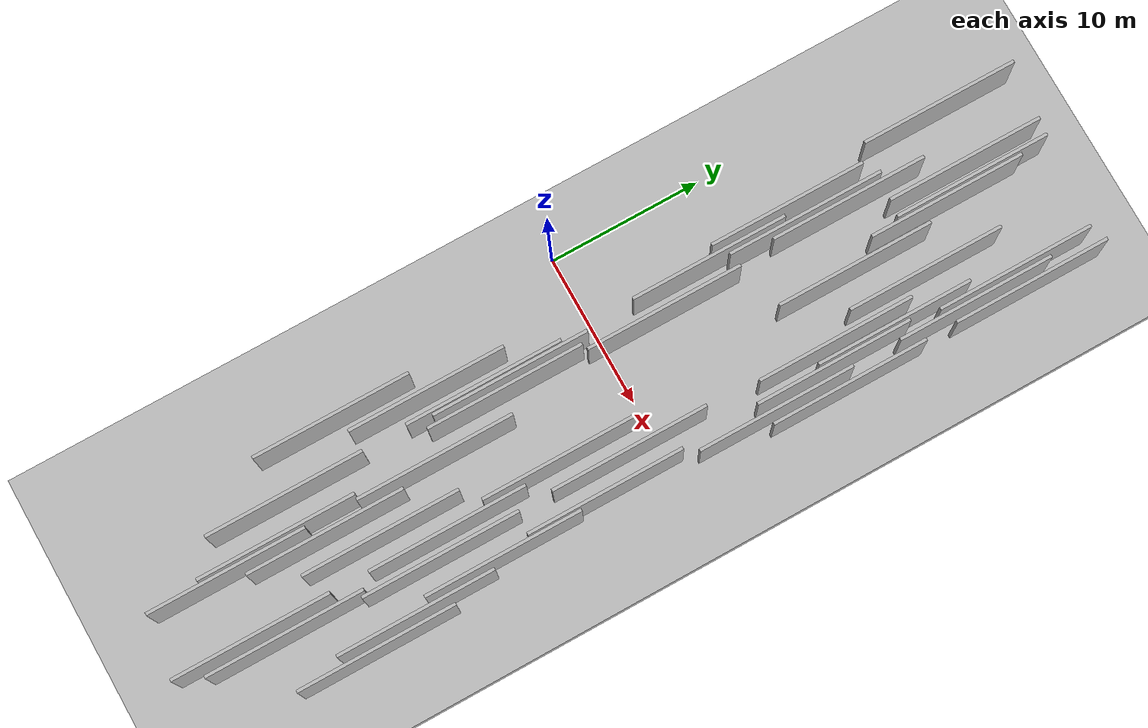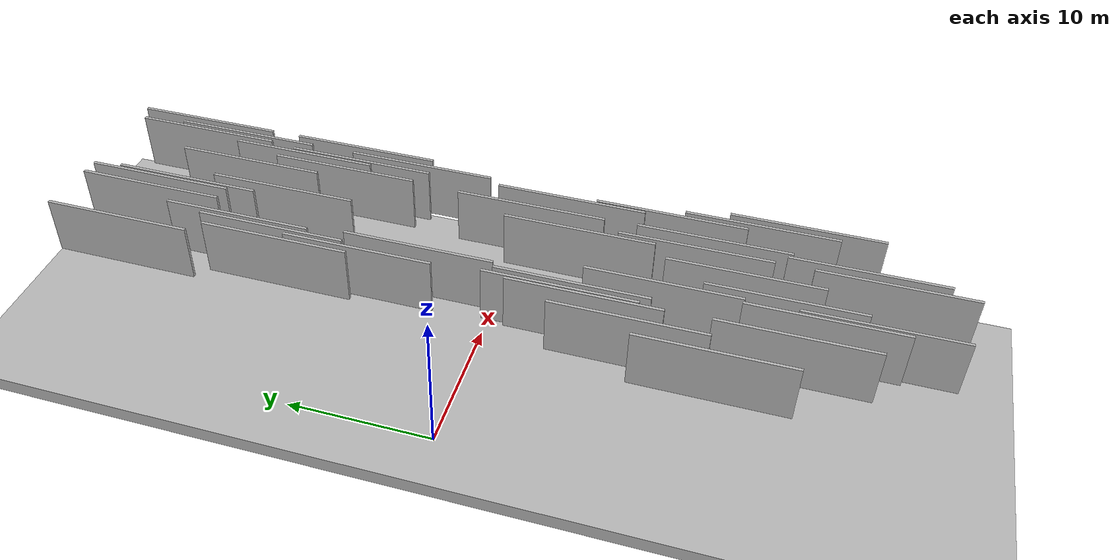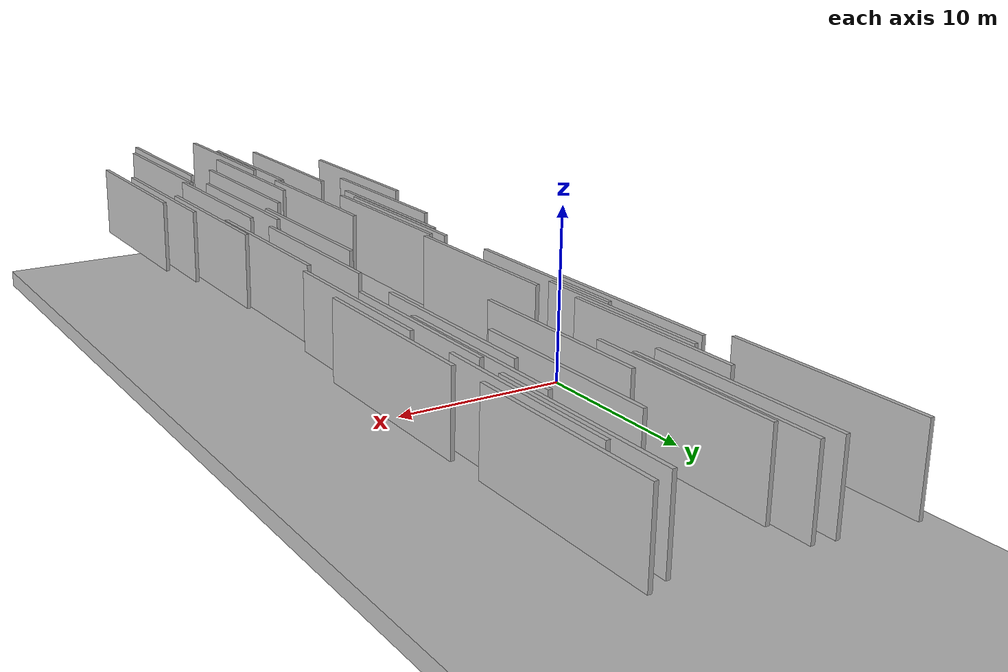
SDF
<?xml version="1.0" encoding="utf-8"?>

<sdf version="1.6">

   <world name="default">

      <gui fullscreen="0">

         <camera name="user_camera">

            <pose>-15 0 4.57585 0 0 0</pose>

            <view_controller>orbit</view_controller>

         </camera>

      </gui>

      <scene>

         <sky>

           <clouds>

             <speed>12</speed>

           </clouds>

         </sky>

         <ambient>0.4 0.4 0.4 1</ambient>

         <background>0.7 0.7 0.7 1</background>

         <shadows>1</shadows>

      </scene>

      <gravity>0 0 -9.8066</gravity>

      <magnetic_field>6e-06 2.3e-05 -4.2e-05</magnetic_field>

      <physics default="0" name="default_physics" type="ode">

         <ode>

            <solver>

               <type>quick</type>

               <iters>10</iters>

               <sor>1.0</sor>

               <use_dynamic_moi_rescaling>0</use_dynamic_moi_rescaling>

            </solver>

            <constraints>

               <cfm>0</cfm>

               <erp>0.2</erp>

               <contact_max_correcting_vel>100</contact_max_correcting_vel>

               <contact_surface_layer>0.001</contact_surface_layer>

            </constraints>

         </ode>

         <max_step_size>0.004</max_step_size>

         <real_time_factor>1</real_time_factor>

         <real_time_update_rate>250</real_time_update_rate>

      </physics>

      <light name="sun" type="directional">

         <cast_shadows>1</cast_shadows>

         <pose>0 0 10 0 0 0</pose>

         <diffuse>0.8 0.8 0.8 1</diffuse>

         <specular>0.2 0.2 0.2 1</specular>

         <attenuation>

            <range>1000</range>

            <constant>0.9</constant>

            <linear>0.01</linear>

            <quadratic>0.001</quadratic>

         </attenuation>

         <direction>-0.5 0.1 -0.9</direction>

      </light>

      <include>

         <name>ground_plane_1</name>

         <uri>model://HANNAS_ground_plane</uri>

         <pose>0 0 0  0 0 0</pose>

      </include>

      <include>

         <name>ground_plane_2</name>

         <uri>model://HANNAS_ground_plane</uri>

         <pose>100 0 0  0 0 0</pose>

      </include>

      <model name="HANNAS_wall_1">

         <static>1</static>

         <pose frame="">11.0375 -16.7799 5.0 0.000000 0.000000 1.570796</pose>

         <link name="link">

            <pose frame="">0 0 2.00 0 0 0</pose>

            <collision name="collision">

               <geometry>

                  <box>

                     <size>10.00 0.2 4.00</size>

                  </box>

               </geometry>

               <max_contacts>10</max_contacts>

               <surface>

                  <contact>

                     <ode/>

                  </contact>

                  <bounce/>

                  <friction>

                     <torsional>

                        <ode/>

                     </torsional>

                     <ode/>

                  </friction>

               </surface>

            </collision>

            <visual name="visual">

               <cast_shadows>0</cast_shadows>

               <geometry>

                  <box>

                     <size>10.00 0.2 4.00</size>

                  </box>

               </geometry>

               <material>

                  <script>

                     <uri>model://HANNAS_wall/materials/scripts</uri>

                     <uri>model://HANNAS_wall/materials/textures</uri>

                     <name>vrc/HANNAS_wall</name>

                  </script>

               </material>

            </visual>

            <self_collide>0</self_collide>

            <enable_wind>0</enable_wind>

            <kinematic>0</kinematic>

         </link>

      </model>

      <model name="HANNAS_wall_2">

         <static>1</static>

         <pose frame="">8.7312 -12.0784 5.0 0.000000 0.000000 1.570796</pose>

         <link name="link">

            <pose frame="">0 0 2.00 0 0 0</pose>

            <collision name="collision">

               <geometry>

                  <box>

                     <size>10.00 0.2 4.00</size>

                  </box>

               </geometry>

               <max_contacts>10</max_contacts>

               <surface>

                  <contact>

                     <ode/>

                  </contact>

                  <bounce/>

                  <friction>

                     <torsional>

                        <ode/>

                     </torsional>

                     <ode/>

                  </friction>

               </surface>

            </collision>

            <visual name="visual">

               <cast_shadows>0</cast_shadows>

               <geometry>

                  <box>

                     <size>10.00 0.2 4.00</size>

                  </box>

               </geometry>

               <material>

                  <script>

                     <uri>model://HANNAS_wall/materials/scripts</uri>

                     <uri>model://HANNAS_wall/materials/textures</uri>

                     <name>vrc/HANNAS_wall</name>

                  </script>

               </material>

            </visual>

            <self_collide>0</self_collide>

            <enable_wind>0</enable_wind>

            <kinematic>0</kinematic>

         </link>

      </model>

      <model name="HANNAS_wall_3">

         <static>1</static>

         <pose frame="">14.6772 14.4117 5.0 0.000000 0.000000 1.570796</pose>

         <link name="link">

            <pose frame="">0 0 2.00 0 0 0</pose>

            <collision name="collision">

               <geometry>

                  <box>

                     <size>10.00 0.2 4.00</size>

                  </box>

               </geometry>

               <max_contacts>10</max_contacts>

               <surface>

                  <contact>

                     <ode/>

                  </contact>

                  <bounce/>

                  <friction>

                     <torsional>

                        <ode/>

                     </torsional>

                     <ode/>

                  </friction>

               </surface>

            </collision>

            <visual name="visual">

               <cast_shadows>0</cast_shadows>

               <geometry>

                  <box>

                     <size>10.00 0.2 4.00</size>

                  </box>

               </geometry>

               <material>

                  <script>

                     <uri>model://HANNAS_wall/materials/scripts</uri>

                     <uri>model://HANNAS_wall/materials/textures</uri>

                     <name>vrc/HANNAS_wall</name>

                  </script>

               </material>

            </visual>

            <self_collide>0</self_collide>

            <enable_wind>0</enable_wind>

            <kinematic>0</kinematic>

         </link>

      </model>

      <model name="HANNAS_wall_4">

         <static>1</static>

         <pose frame="">15.1227 -4.6517 5.0 0.000000 0.000000 1.570796</pose>

         <link name="link">

            <pose frame="">0 0 2.00 0 0 0</pose>

            <collision name="collision">

               <geometry>

                  <box>

                     <size>10.00 0.2 4.00</size>

                  </box>

               </geometry>

               <max_contacts>10</max_contacts>

               <surface>

                  <contact>

                     <ode/>

                  </contact>

                  <bounce/>

                  <friction>

                     <torsional>

                        <ode/>

                     </torsional>

                     <ode/>

                  </friction>

               </surface>

            </collision>

            <visual name="visual">

               <cast_shadows>0</cast_shadows>

               <geometry>

                  <box>

                     <size>10.00 0.2 4.00</size>

                  </box>

               </geometry>

               <material>

                  <script>

                     <uri>model://HANNAS_wall/materials/scripts</uri>

                     <uri>model://HANNAS_wall/materials/textures</uri>

                     <name>vrc/HANNAS_wall</name>

                  </script>

               </material>

            </visual>

            <self_collide>0</self_collide>

            <enable_wind>0</enable_wind>

            <kinematic>0</kinematic>

         </link>

      </model>

      <model name="HANNAS_wall_5">

         <static>1</static>

         <pose frame="">13.3952 -24.0836 5.0 0.000000 0.000000 1.570796</pose>

         <link name="link">

            <pose frame="">0 0 2.00 0 0 0</pose>

            <collision name="collision">

               <geometry>

                  <box>

                     <size>10.00 0.2 4.00</size>

                  </box>

               </geometry>

               <max_contacts>10</max_contacts>

               <surface>

                  <contact>

                     <ode/>

                  </contact>

                  <bounce/>

                  <friction>

                     <torsional>

                        <ode/>

                     </torsional>

                     <ode/>

                  </friction>

               </surface>

            </collision>

            <visual name="visual">

               <cast_shadows>0</cast_shadows>

               <geometry>

                  <box>

                     <size>10.00 0.2 4.00</size>

                  </box>

               </geometry>

               <material>

                  <script>

                     <uri>model://HANNAS_wall/materials/scripts</uri>

                     <uri>model://HANNAS_wall/materials/textures</uri>

                     <name>vrc/HANNAS_wall</name>

                  </script>

               </material>

            </visual>

            <self_collide>0</self_collide>

            <enable_wind>0</enable_wind>

            <kinematic>0</kinematic>

         </link>

      </model>

      <model name="HANNAS_wall_6">

         <static>1</static>

         <pose frame="">16.4184 10.4827 5.0 0.000000 0.000000 1.570796</pose>

         <link name="link">

            <pose frame="">0 0 2.00 0 0 0</pose>

            <collision name="collision">

               <geometry>

                  <box>

                     <size>10.00 0.2 4.00</size>

                  </box>

               </geometry>

               <max_contacts>10</max_contacts>

               <surface>

                  <contact>

                     <ode/>

                  </contact>

                  <bounce/>

                  <friction>

                     <torsional>

                        <ode/>

                     </torsional>

                     <ode/>

                  </friction>

               </surface>

            </collision>

            <visual name="visual">

               <cast_shadows>0</cast_shadows>

               <geometry>

                  <box>

                     <size>10.00 0.2 4.00</size>

                  </box>

               </geometry>

               <material>

                  <script>

                     <uri>model://HANNAS_wall/materials/scripts</uri>

                     <uri>model://HANNAS_wall/materials/textures</uri>

                     <name>vrc/HANNAS_wall</name>

                  </script>

               </material>

            </visual>

            <self_collide>0</self_collide>

            <enable_wind>0</enable_wind>

            <kinematic>0</kinematic>

         </link>

      </model>

      <model name="HANNAS_wall_7">

         <static>1</static>

         <pose frame="">6.6404 13.1950 5.0 0.000000 0.000000 1.570796</pose>

         <link name="link">

            <pose frame="">0 0 2.00 0 0 0</pose>

            <collision name="collision">

               <geometry>

                  <box>

                     <size>10.00 0.2 4.00</size>

                  </box>

               </geometry>

               <max_contacts>10</max_contacts>

               <surface>

                  <contact>

                     <ode/>

                  </contact>

                  <bounce/>

                  <friction>

                     <torsional>

                        <ode/>

                     </torsional>

                     <ode/>

                  </friction>

               </surface>

            </collision>

            <visual name="visual">

               <cast_shadows>0</cast_shadows>

               <geometry>

                  <box>

                     <size>10.00 0.2 4.00</size>

                  </box>

               </geometry>

               <material>

                  <script>

                     <uri>model://HANNAS_wall/materials/scripts</uri>

                     <uri>model://HANNAS_wall/materials/textures</uri>

                     <name>vrc/HANNAS_wall</name>

                  </script>

               </material>

            </visual>

            <self_collide>0</self_collide>

            <enable_wind>0</enable_wind>

            <kinematic>0</kinematic>

         </link>

      </model>

      <model name="HANNAS_wall_8">

         <static>1</static>

         <pose frame="">9.7007 20.7970 5.0 0.000000 0.000000 1.570796</pose>

         <link name="link">

            <pose frame="">0 0 2.00 0 0 0</pose>

            <collision name="collision">

               <geometry>

                  <box>

                     <size>10.00 0.2 4.00</size>

                  </box>

               </geometry>

               <max_contacts>10</max_contacts>

               <surface>

                  <contact>

                     <ode/>

                  </contact>

                  <bounce/>

                  <friction>

                     <torsional>

                        <ode/>

                     </torsional>

                     <ode/>

                  </friction>

               </surface>

            </collision>

            <visual name="visual">

               <cast_shadows>0</cast_shadows>

               <geometry>

                  <box>

                     <size>10.00 0.2 4.00</size>

                  </box>

               </geometry>

               <material>

                  <script>

                     <uri>model://HANNAS_wall/materials/scripts</uri>

                     <uri>model://HANNAS_wall/materials/textures</uri>

                     <name>vrc/HANNAS_wall</name>

                  </script>

               </material>

            </visual>

            <self_collide>0</self_collide>

            <enable_wind>0</enable_wind>

            <kinematic>0</kinematic>

         </link>

      </model>

      <model name="HANNAS_wall_9">

         <static>1</static>

         <pose frame="">7.5157 3.4173 5.0 0.000000 0.000000 1.570796</pose>

         <link name="link">

            <pose frame="">0 0 2.00 0 0 0</pose>

            <collision name="collision">

               <geometry>

                  <box>

                     <size>10.00 0.2 4.00</size>

                  </box>

               </geometry>

               <max_contacts>10</max_contacts>

               <surface>

                  <contact>

                     <ode/>

                  </contact>

                  <bounce/>

                  <friction>

                     <torsional>

                        <ode/>

                     </torsional>

                     <ode/>

                  </friction>

               </surface>

            </collision>

            <visual name="visual">

               <cast_shadows>0</cast_shadows>

               <geometry>

                  <box>

                     <size>10.00 0.2 4.00</size>

                  </box>

               </geometry>

               <material>

                  <script>

                     <uri>model://HANNAS_wall/materials/scripts</uri>

                     <uri>model://HANNAS_wall/materials/textures</uri>

                     <name>vrc/HANNAS_wall</name>

                  </script>

               </material>

            </visual>

            <self_collide>0</self_collide>

            <enable_wind>0</enable_wind>

            <kinematic>0</kinematic>

         </link>

      </model>

      <model name="HANNAS_wall_10">

         <static>1</static>

         <pose frame="">6.4419 -20.4686 5.0 0.000000 0.000000 1.570796</pose>

         <link name="link">

            <pose frame="">0 0 2.00 0 0 0</pose>

            <collision name="collision">

               <geometry>

                  <box>

                     <size>10.00 0.2 4.00</size>

                  </box>

               </geometry>

               <max_contacts>10</max_contacts>

               <surface>

                  <contact>

                     <ode/>

                  </contact>

                  <bounce/>

                  <friction>

                     <torsional>

                        <ode/>

                     </torsional>

                     <ode/>

                  </friction>

               </surface>

            </collision>

            <visual name="visual">

               <cast_shadows>0</cast_shadows>

               <geometry>

                  <box>

                     <size>10.00 0.2 4.00</size>

                  </box>

               </geometry>

               <material>

                  <script>

                     <uri>model://HANNAS_wall/materials/scripts</uri>

                     <uri>model://HANNAS_wall/materials/textures</uri>

                     <name>vrc/HANNAS_wall</name>

                  </script>

               </material>

            </visual>

            <self_collide>0</self_collide>

            <enable_wind>0</enable_wind>

            <kinematic>0</kinematic>

         </link>

      </model>

      <model name="HANNAS_wall_11">

         <static>1</static>

         <pose frame="">6.3266 -7.6343 5.0 0.000000 0.000000 1.570796</pose>

         <link name="link">

            <pose frame="">0 0 2.00 0 0 0</pose>

            <collision name="collision">

               <geometry>

                  <box>

                     <size>10.00 0.2 4.00</size>

                  </box>

               </geometry>

               <max_contacts>10</max_contacts>

               <surface>

                  <contact>

                     <ode/>

                  </contact>

                  <bounce/>

                  <friction>

                     <torsional>

                        <ode/>

                     </torsional>

                     <ode/>

                  </friction>

               </surface>

            </collision>

            <visual name="visual">

               <cast_shadows>0</cast_shadows>

               <geometry>

                  <box>

                     <size>10.00 0.2 4.00</size>

                  </box>

               </geometry>

               <material>

                  <script>

                     <uri>model://HANNAS_wall/materials/scripts</uri>

                     <uri>model://HANNAS_wall/materials/textures</uri>

                     <name>vrc/HANNAS_wall</name>

                  </script>

               </material>

            </visual>

            <self_collide>0</self_collide>

            <enable_wind>0</enable_wind>

            <kinematic>0</kinematic>

         </link>

      </model>

      <model name="HANNAS_wall_12">

         <static>1</static>

         <pose frame="">12.6332 -25.8149 5.0 0.000000 0.000000 1.570796</pose>

         <link name="link">

            <pose frame="">0 0 2.00 0 0 0</pose>

            <collision name="collision">

               <geometry>

                  <box>

                     <size>10.00 0.2 4.00</size>

                  </box>

               </geometry>

               <max_contacts>10</max_contacts>

               <surface>

                  <contact>

                     <ode/>

                  </contact>

                  <bounce/>

                  <friction>

                     <torsional>

                        <ode/>

                     </torsional>

                     <ode/>

                  </friction>

               </surface>

            </collision>

            <visual name="visual">

               <cast_shadows>0</cast_shadows>

               <geometry>

                  <box>

                     <size>10.00 0.2 4.00</size>

                  </box>

               </geometry>

               <material>

                  <script>

                     <uri>model://HANNAS_wall/materials/scripts</uri>

                     <uri>model://HANNAS_wall/materials/textures</uri>

                     <name>vrc/HANNAS_wall</name>

                  </script>

               </material>

            </visual>

            <self_collide>0</self_collide>

            <enable_wind>0</enable_wind>

            <kinematic>0</kinematic>

         </link>

      </model>

      <model name="HANNAS_wall_13">

         <static>1</static>

         <pose frame="">12.6423 -13.3942 5.0 0.000000 0.000000 1.570796</pose>

         <link name="link">

            <pose frame="">0 0 2.00 0 0 0</pose>

            <collision name="collision">

               <geometry>

                  <box>

                     <size>10.00 0.2 4.00</size>

                  </box>

               </geometry>

               <max_contacts>10</max_contacts>

               <surface>

                  <contact>

                     <ode/>

                  </contact>

                  <bounce/>

                  <friction>

                     <torsional>

                        <ode/>

                     </torsional>

                     <ode/>

                  </friction>

               </surface>

            </collision>

            <visual name="visual">

               <cast_shadows>0</cast_shadows>

               <geometry>

                  <box>

                     <size>10.00 0.2 4.00</size>

                  </box>

               </geometry>

               <material>

                  <script>

                     <uri>model://HANNAS_wall/materials/scripts</uri>

                     <uri>model://HANNAS_wall/materials/textures</uri>

                     <name>vrc/HANNAS_wall</name>

                  </script>

               </material>

            </visual>

            <self_collide>0</self_collide>

            <enable_wind>0</enable_wind>

            <kinematic>0</kinematic>

         </link>

      </model>

      <model name="HANNAS_wall_14">

         <static>1</static>

         <pose frame="">9.4470 -19.4507 5.0 0.000000 0.000000 1.570796</pose>

         <link name="link">

            <pose frame="">0 0 2.00 0 0 0</pose>

            <collision name="collision">

               <geometry>

                  <box>

                     <size>10.00 0.2 4.00</size>

                  </box>

               </geometry>

               <max_contacts>10</max_contacts>

               <surface>

                  <contact>

                     <ode/>

                  </contact>

                  <bounce/>

                  <friction>

                     <torsional>

                        <ode/>

                     </torsional>

                     <ode/>

                  </friction>

               </surface>

            </collision>

            <visual name="visual">

               <cast_shadows>0</cast_shadows>

               <geometry>

                  <box>

                     <size>10.00 0.2 4.00</size>

                  </box>

               </geometry>

               <material>

                  <script>

                     <uri>model://HANNAS_wall/materials/scripts</uri>

                     <uri>model://HANNAS_wall/materials/textures</uri>

                     <name>vrc/HANNAS_wall</name>

                  </script>

               </material>

            </visual>

            <self_collide>0</self_collide>

            <enable_wind>0</enable_wind>

            <kinematic>0</kinematic>

         </link>

      </model>

      <model name="HANNAS_wall_15">

         <static>1</static>

         <pose frame="">6.5810 -6.0678 5.0 0.000000 0.000000 1.570796</pose>

         <link name="link">

            <pose frame="">0 0 2.00 0 0 0</pose>

            <collision name="collision">

               <geometry>

                  <box>

                     <size>10.00 0.2 4.00</size>

                  </box>

               </geometry>

               <max_contacts>10</max_contacts>

               <surface>

                  <contact>

                     <ode/>

                  </contact>

                  <bounce/>

                  <friction>

                     <torsional>

                        <ode/>

                     </torsional>

                     <ode/>

                  </friction>

               </surface>

            </collision>

            <visual name="visual">

               <cast_shadows>0</cast_shadows>

               <geometry>

                  <box>

                     <size>10.00 0.2 4.00</size>

                  </box>

               </geometry>

               <material>

                  <script>

                     <uri>model://HANNAS_wall/materials/scripts</uri>

                     <uri>model://HANNAS_wall/materials/textures</uri>

                     <name>vrc/HANNAS_wall</name>

                  </script>

               </material>

            </visual>

            <self_collide>0</self_collide>

            <enable_wind>0</enable_wind>

            <kinematic>0</kinematic>

         </link>

      </model>

      <model name="HANNAS_wall_16">

         <static>1</static>

         <pose frame="">4.6924 23.2341 5.0 0.000000 0.000000 1.570796</pose>

         <link name="link">

            <pose frame="">0 0 2.00 0 0 0</pose>

            <collision name="collision">

               <geometry>

                  <box>

                     <size>10.00 0.2 4.00</size>

                  </box>

               </geometry>

               <max_contacts>10</max_contacts>

               <surface>

                  <contact>

                     <ode/>

                  </contact>

                  <bounce/>

                  <friction>

                     <torsional>

                        <ode/>

                     </torsional>

                     <ode/>

                  </friction>

               </surface>

            </collision>

            <visual name="visual">

               <cast_shadows>0</cast_shadows>

               <geometry>

                  <box>

                     <size>10.00 0.2 4.00</size>

                  </box>

               </geometry>

               <material>

                  <script>

                     <uri>model://HANNAS_wall/materials/scripts</uri>

                     <uri>model://HANNAS_wall/materials/textures</uri>

                     <name>vrc/HANNAS_wall</name>

                  </script>

               </material>

            </visual>

            <self_collide>0</self_collide>

            <enable_wind>0</enable_wind>

            <kinematic>0</kinematic>

         </link>

      </model>

      <model name="HANNAS_wall_17">

         <static>1</static>

         <pose frame="">9.3925 22.6622 5.0 0.000000 0.000000 1.570796</pose>

         <link name="link">

            <pose frame="">0 0 2.00 0 0 0</pose>

            <collision name="collision">

               <geometry>

                  <box>

                     <size>10.00 0.2 4.00</size>

                  </box>

               </geometry>

               <max_contacts>10</max_contacts>

               <surface>

                  <contact>

                     <ode/>

                  </contact>

                  <bounce/>

                  <friction>

                     <torsional>

                        <ode/>

                     </torsional>

                     <ode/>

                  </friction>

               </surface>

            </collision>

            <visual name="visual">

               <cast_shadows>0</cast_shadows>

               <geometry>

                  <box>

                     <size>10.00 0.2 4.00</size>

                  </box>

               </geometry>

               <material>

                  <script>

                     <uri>model://HANNAS_wall/materials/scripts</uri>

                     <uri>model://HANNAS_wall/materials/textures</uri>

                     <name>vrc/HANNAS_wall</name>

                  </script>

               </material>

            </visual>

            <self_collide>0</self_collide>

            <enable_wind>0</enable_wind>

            <kinematic>0</kinematic>

         </link>

      </model>

      <model name="HANNAS_wall_18">

         <static>1</static>

         <pose frame="">7.0866 15.8026 5.0 0.000000 0.000000 1.570796</pose>

         <link name="link">

            <pose frame="">0 0 2.00 0 0 0</pose>

            <collision name="collision">

               <geometry>

                  <box>

                     <size>10.00 0.2 4.00</size>

                  </box>

               </geometry>

               <max_contacts>10</max_contacts>

               <surface>

                  <contact>

                     <ode/>

                  </contact>

                  <bounce/>

                  <friction>

                     <torsional>

                        <ode/>

                     </torsional>

                     <ode/>

                  </friction>

               </surface>

            </collision>

            <visual name="visual">

               <cast_shadows>0</cast_shadows>

               <geometry>

                  <box>

                     <size>10.00 0.2 4.00</size>

                  </box>

               </geometry>

               <material>

                  <script>

                     <uri>model://HANNAS_wall/materials/scripts</uri>

                     <uri>model://HANNAS_wall/materials/textures</uri>

                     <name>vrc/HANNAS_wall</name>

                  </script>

               </material>

            </visual>

            <self_collide>0</self_collide>

            <enable_wind>0</enable_wind>

            <kinematic>0</kinematic>

         </link>

      </model>

      <model name="HANNAS_wall_19">

         <static>1</static>

         <pose frame="">3.7827 -16.0695 5.0 0.000000 0.000000 1.570796</pose>

         <link name="link">

            <pose frame="">0 0 2.00 0 0 0</pose>

            <collision name="collision">

               <geometry>

                  <box>

                     <size>10.00 0.2 4.00</size>

                  </box>

               </geometry>

               <max_contacts>10</max_contacts>

               <surface>

                  <contact>

                     <ode/>

                  </contact>

                  <bounce/>

                  <friction>

                     <torsional>

                        <ode/>

                     </torsional>

                     <ode/>

                  </friction>

               </surface>

            </collision>

            <visual name="visual">

               <cast_shadows>0</cast_shadows>

               <geometry>

                  <box>

                     <size>10.00 0.2 4.00</size>

                  </box>

               </geometry>

               <material>

                  <script>

                     <uri>model://HANNAS_wall/materials/scripts</uri>

                     <uri>model://HANNAS_wall/materials/textures</uri>

                     <name>vrc/HANNAS_wall</name>

                  </script>

               </material>

            </visual>

            <self_collide>0</self_collide>

            <enable_wind>0</enable_wind>

            <kinematic>0</kinematic>

         </link>

      </model>

      <model name="HANNAS_wall_20">

         <static>1</static>

         <pose frame="">13.8716 11.0214 5.0 0.000000 0.000000 1.570796</pose>

         <link name="link">

            <pose frame="">0 0 2.00 0 0 0</pose>

            <collision name="collision">

               <geometry>

                  <box>

                     <size>10.00 0.2 4.00</size>

                  </box>

               </geometry>

               <max_contacts>10</max_contacts>

               <surface>

                  <contact>

                     <ode/>

                  </contact>

                  <bounce/>

                  <friction>

                     <torsional>

                        <ode/>

                     </torsional>

                     <ode/>

                  </friction>

               </surface>

            </collision>

            <visual name="visual">

               <cast_shadows>0</cast_shadows>

               <geometry>

                  <box>

                     <size>10.00 0.2 4.00</size>

                  </box>

               </geometry>

               <material>

                  <script>

                     <uri>model://HANNAS_wall/materials/scripts</uri>

                     <uri>model://HANNAS_wall/materials/textures</uri>

                     <name>vrc/HANNAS_wall</name>

                  </script>

               </material>

            </visual>

            <self_collide>0</self_collide>

            <enable_wind>0</enable_wind>

            <kinematic>0</kinematic>

         </link>

      </model>

      <model name="HANNAS_wall_21">

         <static>1</static>

         <pose frame="">15.7104 6.0974 5.0 0.000000 0.000000 1.570796</pose>

         <link name="link">

            <pose frame="">0 0 2.00 0 0 0</pose>

            <collision name="collision">

               <geometry>

                  <box>

                     <size>10.00 0.2 4.00</size>

                  </box>

               </geometry>

               <max_contacts>10</max_contacts>

               <surface>

                  <contact>

                     <ode/>

                  </contact>

                  <bounce/>

                  <friction>

                     <torsional>

                        <ode/>

                     </torsional>

                     <ode/>

                  </friction>

               </surface>

            </collision>

            <visual name="visual">

               <cast_shadows>0</cast_shadows>

               <geometry>

                  <box>

                     <size>10.00 0.2 4.00</size>

                  </box>

               </geometry>

               <material>

                  <script>

                     <uri>model://HANNAS_wall/materials/scripts</uri>

                     <uri>model://HANNAS_wall/materials/textures</uri>

                     <name>vrc/HANNAS_wall</name>

                  </script>

               </material>

            </visual>

            <self_collide>0</self_collide>

            <enable_wind>0</enable_wind>

            <kinematic>0</kinematic>

         </link>

      </model>

      <model name="HANNAS_wall_22">

         <static>1</static>

         <pose frame="">10.6238 14.1746 5.0 0.000000 0.000000 1.570796</pose>

         <link name="link">

            <pose frame="">0 0 2.00 0 0 0</pose>

            <collision name="collision">

               <geometry>

                  <box>

                     <size>10.00 0.2 4.00</size>

                  </box>

               </geometry>

               <max_contacts>10</max_contacts>

               <surface>

                  <contact>

                     <ode/>

                  </contact>

                  <bounce/>

                  <friction>

                     <torsional>

                        <ode/>

                     </torsional>

                     <ode/>

                  </friction>

               </surface>

            </collision>

            <visual name="visual">

               <cast_shadows>0</cast_shadows>

               <geometry>

                  <box>

                     <size>10.00 0.2 4.00</size>

                  </box>

               </geometry>

               <material>

                  <script>

                     <uri>model://HANNAS_wall/materials/scripts</uri>

                     <uri>model://HANNAS_wall/materials/textures</uri>

                     <name>vrc/HANNAS_wall</name>

                  </script>

               </material>

            </visual>

            <self_collide>0</self_collide>

            <enable_wind>0</enable_wind>

            <kinematic>0</kinematic>

         </link>

      </model>

      <model name="HANNAS_wall_23">

         <static>1</static>

         <pose frame="">15.2816 22.0513 5.0 0.000000 0.000000 1.570796</pose>

         <link name="link">

            <pose frame="">0 0 2.00 0 0 0</pose>

            <collision name="collision">

               <geometry>

                  <box>

                     <size>10.00 0.2 4.00</size>

                  </box>

               </geometry>

               <max_contacts>10</max_contacts>

               <surface>

                  <contact>

                     <ode/>

                  </contact>

                  <bounce/>

                  <friction>

                     <torsional>

                        <ode/>

                     </torsional>

                     <ode/>

                  </friction>

               </surface>

            </collision>

            <visual name="visual">

               <cast_shadows>0</cast_shadows>

               <geometry>

                  <box>

                     <size>10.00 0.2 4.00</size>

                  </box>

               </geometry>

               <material>

                  <script>

                     <uri>model://HANNAS_wall/materials/scripts</uri>

                     <uri>model://HANNAS_wall/materials/textures</uri>

                     <name>vrc/HANNAS_wall</name>

                  </script>

               </material>

            </visual>

            <self_collide>0</self_collide>

            <enable_wind>0</enable_wind>

            <kinematic>0</kinematic>

         </link>

      </model>

      <model name="HANNAS_wall_24">

         <static>1</static>

         <pose frame="">14.9816 10.2617 5.0 0.000000 0.000000 1.570796</pose>

         <link name="link">

            <pose frame="">0 0 2.00 0 0 0</pose>

            <collision name="collision">

               <geometry>

                  <box>

                     <size>10.00 0.2 4.00</size>

                  </box>

               </geometry>

               <max_contacts>10</max_contacts>

               <surface>

                  <contact>

                     <ode/>

                  </contact>

                  <bounce/>

                  <friction>

                     <torsional>

                        <ode/>

                     </torsional>

                     <ode/>

                  </friction>

               </surface>

            </collision>

            <visual name="visual">

               <cast_shadows>0</cast_shadows>

               <geometry>

                  <box>

                     <size>10.00 0.2 4.00</size>

                  </box>

               </geometry>

               <material>

                  <script>

                     <uri>model://HANNAS_wall/materials/scripts</uri>

                     <uri>model://HANNAS_wall/materials/textures</uri>

                     <name>vrc/HANNAS_wall</name>

                  </script>

               </material>

            </visual>

            <self_collide>0</self_collide>

            <enable_wind>0</enable_wind>

            <kinematic>0</kinematic>

         </link>

      </model>

      <model name="HANNAS_wall_25">

         <static>1</static>

         <pose frame="">8.7066 -25.3201 5.0 0.000000 0.000000 1.570796</pose>

         <link name="link">

            <pose frame="">0 0 2.00 0 0 0</pose>

            <collision name="collision">

               <geometry>

                  <box>

                     <size>10.00 0.2 4.00</size>

                  </box>

               </geometry>

               <max_contacts>10</max_contacts>

               <surface>

                  <contact>

                     <ode/>

                  </contact>

                  <bounce/>

                  <friction>

                     <torsional>

                        <ode/>

                     </torsional>

                     <ode/>

                  </friction>

               </surface>

            </collision>

            <visual name="visual">

               <cast_shadows>0</cast_shadows>

               <geometry>

                  <box>

                     <size>10.00 0.2 4.00</size>

                  </box>

               </geometry>

               <material>

                  <script>

                     <uri>model://HANNAS_wall/materials/scripts</uri>

                     <uri>model://HANNAS_wall/materials/textures</uri>

                     <name>vrc/HANNAS_wall</name>

                  </script>

               </material>

            </visual>

            <self_collide>0</self_collide>

            <enable_wind>0</enable_wind>

            <kinematic>0</kinematic>

         </link>

      </model>

      <model name="HANNAS_wall_26">

         <static>1</static>

         <pose frame="">8.3438 22.7989 5.0 0.000000 0.000000 1.570796</pose>

         <link name="link">

            <pose frame="">0 0 2.00 0 0 0</pose>

            <collision name="collision">

               <geometry>

                  <box>

                     <size>10.00 0.2 4.00</size>

                  </box>

               </geometry>

               <max_contacts>10</max_contacts>

               <surface>

                  <contact>

                     <ode/>

                  </contact>

                  <bounce/>

                  <friction>

                     <torsional>

                        <ode/>

                     </torsional>

                     <ode/>

                  </friction>

               </surface>

            </collision>

            <visual name="visual">

               <cast_shadows>0</cast_shadows>

               <geometry>

                  <box>

                     <size>10.00 0.2 4.00</size>

                  </box>

               </geometry>

               <material>

                  <script>

                     <uri>model://HANNAS_wall/materials/scripts</uri>

                     <uri>model://HANNAS_wall/materials/textures</uri>

                     <name>vrc/HANNAS_wall</name>

                  </script>

               </material>

            </visual>

            <self_collide>0</self_collide>

            <enable_wind>0</enable_wind>

            <kinematic>0</kinematic>

         </link>

      </model>

      <model name="HANNAS_wall_27">

         <static>1</static>

         <pose frame="">5.0604 -10.6449 5.0 0.000000 0.000000 1.570796</pose>

         <link name="link">

            <pose frame="">0 0 2.00 0 0 0</pose>

            <collision name="collision">

               <geometry>

                  <box>

                     <size>10.00 0.2 4.00</size>

                  </box>

               </geometry>

               <max_contacts>10</max_contacts>

               <surface>

                  <contact>

                     <ode/>

                  </contact>

                  <bounce/>

                  <friction>

                     <torsional>

                        <ode/>

                     </torsional>

                     <ode/>

                  </friction>

               </surface>

            </collision>

            <visual name="visual">

               <cast_shadows>0</cast_shadows>

               <geometry>

                  <box>

                     <size>10.00 0.2 4.00</size>

                  </box>

               </geometry>

               <material>

                  <script>

                     <uri>model://HANNAS_wall/materials/scripts</uri>

                     <uri>model://HANNAS_wall/materials/textures</uri>

                     <name>vrc/HANNAS_wall</name>

                  </script>

               </material>

            </visual>

            <self_collide>0</self_collide>

            <enable_wind>0</enable_wind>

            <kinematic>0</kinematic>

         </link>

      </model>

      <model name="HANNAS_wall_28">

         <static>1</static>

         <pose frame="">13.7444 -14.4174 5.0 0.000000 0.000000 1.570796</pose>

         <link name="link">

            <pose frame="">0 0 2.00 0 0 0</pose>

            <collision name="collision">

               <geometry>

                  <box>

                     <size>10.00 0.2 4.00</size>

                  </box>

               </geometry>

               <max_contacts>10</max_contacts>

               <surface>

                  <contact>

                     <ode/>

                  </contact>

                  <bounce/>

                  <friction>

                     <torsional>

                        <ode/>

                     </torsional>

                     <ode/>

                  </friction>

               </surface>

            </collision>

            <visual name="visual">

               <cast_shadows>0</cast_shadows>

               <geometry>

                  <box>

                     <size>10.00 0.2 4.00</size>

                  </box>

               </geometry>

               <material>

                  <script>

                     <uri>model://HANNAS_wall/materials/scripts</uri>

                     <uri>model://HANNAS_wall/materials/textures</uri>

                     <name>vrc/HANNAS_wall</name>

                  </script>

               </material>

            </visual>

            <self_collide>0</self_collide>

            <enable_wind>0</enable_wind>

            <kinematic>0</kinematic>

         </link>

      </model>

      <model name="HANNAS_wall_29">

         <static>1</static>

         <pose frame="">15.4060 -11.3376 5.0 0.000000 0.000000 1.570796</pose>

         <link name="link">

            <pose frame="">0 0 2.00 0 0 0</pose>

            <collision name="collision">

               <geometry>

                  <box>

                     <size>10.00 0.2 4.00</size>

                  </box>

               </geometry>

               <max_contacts>10</max_contacts>

               <surface>

                  <contact>

                     <ode/>

                  </contact>

                  <bounce/>

                  <friction>

                     <torsional>

                        <ode/>

                     </torsional>

                     <ode/>

                  </friction>

               </surface>

            </collision>

            <visual name="visual">

               <cast_shadows>0</cast_shadows>

               <geometry>

                  <box>

                     <size>10.00 0.2 4.00</size>

                  </box>

               </geometry>

               <material>

                  <script>

                     <uri>model://HANNAS_wall/materials/scripts</uri>

                     <uri>model://HANNAS_wall/materials/textures</uri>

                     <name>vrc/HANNAS_wall</name>

                  </script>

               </material>

            </visual>

            <self_collide>0</self_collide>

            <enable_wind>0</enable_wind>

            <kinematic>0</kinematic>

         </link>

      </model>

      <model name="HANNAS_wall_30">

         <static>1</static>

         <pose frame="">5.6695 12.5507 5.0 0.000000 0.000000 1.570796</pose>

         <link name="link">

            <pose frame="">0 0 2.00 0 0 0</pose>

            <collision name="collision">

               <geometry>

                  <box>

                     <size>10.00 0.2 4.00</size>

                  </box>

               </geometry>

               <max_contacts>10</max_contacts>

               <surface>

                  <contact>

                     <ode/>

                  </contact>

                  <bounce/>

                  <friction>

                     <torsional>

                        <ode/>

                     </torsional>

                     <ode/>

                  </friction>

               </surface>

            </collision>

            <visual name="visual">

               <cast_shadows>0</cast_shadows>

               <geometry>

                  <box>

                     <size>10.00 0.2 4.00</size>

                  </box>

               </geometry>

               <material>

                  <script>

                     <uri>model://HANNAS_wall/materials/scripts</uri>

                     <uri>model://HANNAS_wall/materials/textures</uri>

                     <name>vrc/HANNAS_wall</name>

                  </script>

               </material>

            </visual>

            <self_collide>0</self_collide>

            <enable_wind>0</enable_wind>

            <kinematic>0</kinematic>

         </link>

      </model>

      <model name="HANNAS_wall_31">

         <static>1</static>

         <pose frame="">16.3953 22.4822 5.0 0.000000 0.000000 1.570796</pose>

         <link name="link">

            <pose frame="">0 0 2.00 0 0 0</pose>

            <collision name="collision">

               <geometry>

                  <box>

                     <size>10.00 0.2 4.00</size>

                  </box>

               </geometry>

               <max_contacts>10</max_contacts>

               <surface>

                  <contact>

                     <ode/>

                  </contact>

                  <bounce/>

                  <friction>

                     <torsional>

                        <ode/>

                     </torsional>

                     <ode/>

                  </friction>

               </surface>

            </collision>

            <visual name="visual">

               <cast_shadows>0</cast_shadows>

               <geometry>

                  <box>

                     <size>10.00 0.2 4.00</size>

                  </box>

               </geometry>

               <material>

                  <script>

                     <uri>model://HANNAS_wall/materials/scripts</uri>

                     <uri>model://HANNAS_wall/materials/textures</uri>

                     <name>vrc/HANNAS_wall</name>

                  </script>

               </material>

            </visual>

            <self_collide>0</self_collide>

            <enable_wind>0</enable_wind>

            <kinematic>0</kinematic>

         </link>

      </model>

      <model name="HANNAS_wall_32">

         <static>1</static>

         <pose frame="">12.8082 17.5544 5.0 0.000000 0.000000 1.570796</pose>

         <link name="link">

            <pose frame="">0 0 2.00 0 0 0</pose>

            <collision name="collision">

               <geometry>

                  <box>

                     <size>10.00 0.2 4.00</size>

                  </box>

               </geometry>

               <max_contacts>10</max_contacts>

               <surface>

                  <contact>

                     <ode/>

                  </contact>

                  <bounce/>

                  <friction>

                     <torsional>

                        <ode/>

                     </torsional>

                     <ode/>

                  </friction>

               </surface>

            </collision>

            <visual name="visual">

               <cast_shadows>0</cast_shadows>

               <geometry>

                  <box>

                     <size>10.00 0.2 4.00</size>

                  </box>

               </geometry>

               <material>

                  <script>

                     <uri>model://HANNAS_wall/materials/scripts</uri>

                     <uri>model://HANNAS_wall/materials/textures</uri>

                     <name>vrc/HANNAS_wall</name>

                  </script>

               </material>

            </visual>

            <self_collide>0</self_collide>

            <enable_wind>0</enable_wind>

            <kinematic>0</kinematic>

         </link>

      </model>

      <model name="HANNAS_wall_33">

         <static>1</static>

         <pose frame="">6.2263 7.0826 5.0 0.000000 0.000000 1.570796</pose>

         <link name="link">

            <pose frame="">0 0 2.00 0 0 0</pose>

            <collision name="collision">

               <geometry>

                  <box>

                     <size>10.00 0.2 4.00</size>

                  </box>

               </geometry>

               <max_contacts>10</max_contacts>

               <surface>

                  <contact>

                     <ode/>

                  </contact>

                  <bounce/>

                  <friction>

                     <torsional>

                        <ode/>

                     </torsional>

                     <ode/>

                  </friction>

               </surface>

            </collision>

            <visual name="visual">

               <cast_shadows>0</cast_shadows>

               <geometry>

                  <box>

                     <size>10.00 0.2 4.00</size>

                  </box>

               </geometry>

               <material>

                  <script>

                     <uri>model://HANNAS_wall/materials/scripts</uri>

                     <uri>model://HANNAS_wall/materials/textures</uri>

                     <name>vrc/HANNAS_wall</name>

                  </script>

               </material>

            </visual>

            <self_collide>0</self_collide>

            <enable_wind>0</enable_wind>

            <kinematic>0</kinematic>

         </link>

      </model>

      <model name="HANNAS_wall_34">

         <static>1</static>

         <pose frame="">15.7094 19.1650 5.0 0.000000 0.000000 1.570796</pose>

         <link name="link">

            <pose frame="">0 0 2.00 0 0 0</pose>

            <collision name="collision">

               <geometry>

                  <box>

                     <size>10.00 0.2 4.00</size>

                  </box>

               </geometry>

               <max_contacts>10</max_contacts>

               <surface>

                  <contact>

                     <ode/>

                  </contact>

                  <bounce/>

                  <friction>

                     <torsional>

                        <ode/>

                     </torsional>

                     <ode/>

                  </friction>

               </surface>

            </collision>

            <visual name="visual">

               <cast_shadows>0</cast_shadows>

               <geometry>

                  <box>

                     <size>10.00 0.2 4.00</size>

                  </box>

               </geometry>

               <material>

                  <script>

                     <uri>model://HANNAS_wall/materials/scripts</uri>

                     <uri>model://HANNAS_wall/materials/textures</uri>

                     <name>vrc/HANNAS_wall</name>

                  </script>

               </material>

            </visual>

            <self_collide>0</self_collide>

            <enable_wind>0</enable_wind>

            <kinematic>0</kinematic>

         </link>

      </model>

      <model name="HANNAS_wall_35">

         <static>1</static>

         <pose frame="">16.6005 -19.9999 5.0 0.000000 0.000000 1.570796</pose>

         <link name="link">

            <pose frame="">0 0 2.00 0 0 0</pose>

            <collision name="collision">

               <geometry>

                  <box>

                     <size>10.00 0.2 4.00</size>

                  </box>

               </geometry>

               <max_contacts>10</max_contacts>

               <surface>

                  <contact>

                     <ode/>

                  </contact>

                  <bounce/>

                  <friction>

                     <torsional>

                        <ode/>

                     </torsional>

                     <ode/>

                  </friction>

               </surface>

            </collision>

            <visual name="visual">

               <cast_shadows>0</cast_shadows>

               <geometry>

                  <box>

                     <size>10.00 0.2 4.00</size>

                  </box>

               </geometry>

               <material>

                  <script>

                     <uri>model://HANNAS_wall/materials/scripts</uri>

                     <uri>model://HANNAS_wall/materials/textures</uri>

                     <name>vrc/HANNAS_wall</name>

                  </script>

               </material>

            </visual>

            <self_collide>0</self_collide>

            <enable_wind>0</enable_wind>

            <kinematic>0</kinematic>

         </link>

      </model>

      <model name="HANNAS_wall_36">

         <static>1</static>

         <pose frame="">13.6437 -2.2726 5.0 0.000000 0.000000 1.570796</pose>

         <link name="link">

            <pose frame="">0 0 2.00 0 0 0</pose>

            <collision name="collision">

               <geometry>

                  <box>

                     <size>10.00 0.2 4.00</size>

                  </box>

               </geometry>

               <max_contacts>10</max_contacts>

               <surface>

                  <contact>

                     <ode/>

                  </contact>

                  <bounce/>

                  <friction>

                     <torsional>

                        <ode/>

                     </torsional>

                     <ode/>

                  </friction>

               </surface>

            </collision>

            <visual name="visual">

               <cast_shadows>0</cast_shadows>

               <geometry>

                  <box>

                     <size>10.00 0.2 4.00</size>

                  </box>

               </geometry>

               <material>

                  <script>

                     <uri>model://HANNAS_wall/materials/scripts</uri>

                     <uri>model://HANNAS_wall/materials/textures</uri>

                     <name>vrc/HANNAS_wall</name>

                  </script>

               </material>

            </visual>

            <self_collide>0</self_collide>

            <enable_wind>0</enable_wind>

            <kinematic>0</kinematic>

         </link>

      </model>

      <model name="HANNAS_wall_37">

         <static>1</static>

         <pose frame="">8.3772 -21.9840 5.0 0.000000 0.000000 1.570796</pose>

         <link name="link">

            <pose frame="">0 0 2.00 0 0 0</pose>

            <collision name="collision">

               <geometry>

                  <box>

                     <size>10.00 0.2 4.00</size>

                  </box>

               </geometry>

               <max_contacts>10</max_contacts>

               <surface>

                  <contact>

                     <ode/>

                  </contact>

                  <bounce/>

                  <friction>

                     <torsional>

                        <ode/>

                     </torsional>

                     <ode/>

                  </friction>

               </surface>

            </collision>

            <visual name="visual">

               <cast_shadows>0</cast_shadows>

               <geometry>

                  <box>

                     <size>10.00 0.2 4.00</size>

                  </box>

               </geometry>

               <material>

                  <script>

                     <uri>model://HANNAS_wall/materials/scripts</uri>

                     <uri>model://HANNAS_wall/materials/textures</uri>

                     <name>vrc/HANNAS_wall</name>

                  </script>

               </material>

            </visual>

            <self_collide>0</self_collide>

            <enable_wind>0</enable_wind>

            <kinematic>0</kinematic>

         </link>

      </model>

      <model name="HANNAS_wall_38">

         <static>1</static>

         <pose frame="">7.1103 -6.6966 5.0 0.000000 0.000000 1.570796</pose>

         <link name="link">

            <pose frame="">0 0 2.00 0 0 0</pose>

            <collision name="collision">

               <geometry>

                  <box>

                     <size>10.00 0.2 4.00</size>

                  </box>

               </geometry>

               <max_contacts>10</max_contacts>

               <surface>

                  <contact>

                     <ode/>

                  </contact>

                  <bounce/>

                  <friction>

                     <torsional>

                        <ode/>

                     </torsional>

                     <ode/>

                  </friction>

               </surface>

            </collision>

            <visual name="visual">

               <cast_shadows>0</cast_shadows>

               <geometry>

                  <box>

                     <size>10.00 0.2 4.00</size>

                  </box>

               </geometry>

               <material>

                  <script>

                     <uri>model://HANNAS_wall/materials/scripts</uri>

                     <uri>model://HANNAS_wall/materials/textures</uri>

                     <name>vrc/HANNAS_wall</name>

                  </script>

               </material>

            </visual>

            <self_collide>0</self_collide>

            <enable_wind>0</enable_wind>

            <kinematic>0</kinematic>

         </link>

      </model>

      <model name="HANNAS_wall_39">

         <static>1</static>

         <pose frame="">15.9437 -17.1658 5.0 0.000000 0.000000 1.570796</pose>

         <link name="link">

            <pose frame="">0 0 2.00 0 0 0</pose>

            <collision name="collision">

               <geometry>

                  <box>

                     <size>10.00 0.2 4.00</size>

                  </box>

               </geometry>

               <max_contacts>10</max_contacts>

               <surface>

                  <contact>

                     <ode/>

                  </contact>

                  <bounce/>

                  <friction>

                     <torsional>

                        <ode/>

                     </torsional>

                     <ode/>

                  </friction>

               </surface>

            </collision>

            <visual name="visual">

               <cast_shadows>0</cast_shadows>

               <geometry>

                  <box>

                     <size>10.00 0.2 4.00</size>

                  </box>

               </geometry>

               <material>

                  <script>

                     <uri>model://HANNAS_wall/materials/scripts</uri>

                     <uri>model://HANNAS_wall/materials/textures</uri>

                     <name>vrc/HANNAS_wall</name>

                  </script>

               </material>

            </visual>

            <self_collide>0</self_collide>

            <enable_wind>0</enable_wind>

            <kinematic>0</kinematic>

         </link>

      </model>

      <model name="HANNAS_wall_40">

         <static>1</static>

         <pose frame="">12.1707 -5.9232 5.0 0.000000 0.000000 1.570796</pose>

         <link name="link">

            <pose frame="">0 0 2.00 0 0 0</pose>

            <collision name="collision">

               <geometry>

                  <box>

                     <size>10.00 0.2 4.00</size>

                  </box>

               </geometry>

               <max_contacts>10</max_contacts>

               <surface>

                  <contact>

                     <ode/>

                  </contact>

                  <bounce/>

                  <friction>

                     <torsional>

                        <ode/>

                     </torsional>

                     <ode/>

                  </friction>

               </surface>

            </collision>

            <visual name="visual">

               <cast_shadows>0</cast_shadows>

               <geometry>

                  <box>

                     <size>10.00 0.2 4.00</size>

                  </box>

               </geometry>

               <material>

                  <script>

                     <uri>model://HANNAS_wall/materials/scripts</uri>

                     <uri>model://HANNAS_wall/materials/textures</uri>

                     <name>vrc/HANNAS_wall</name>

                  </script>

               </material>

            </visual>

            <self_collide>0</self_collide>

            <enable_wind>0</enable_wind>

            <kinematic>0</kinematic>

         </link>

      </model>

   </world>

</sdf>
